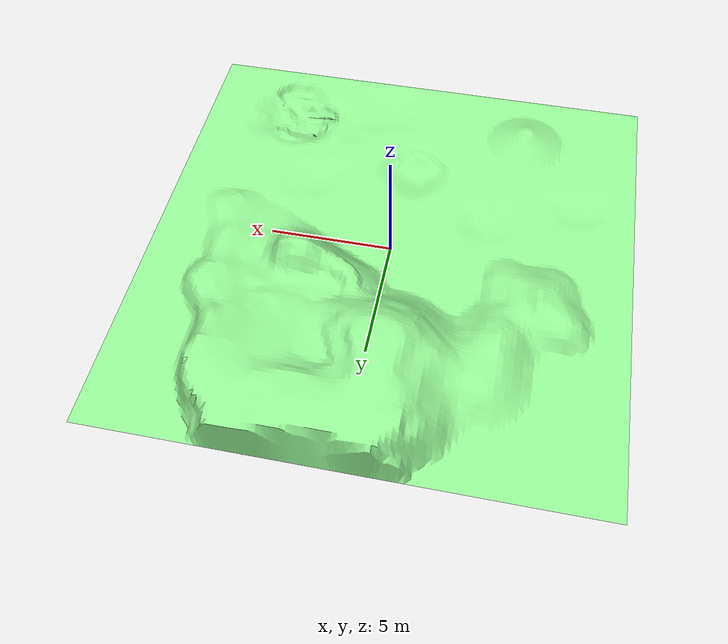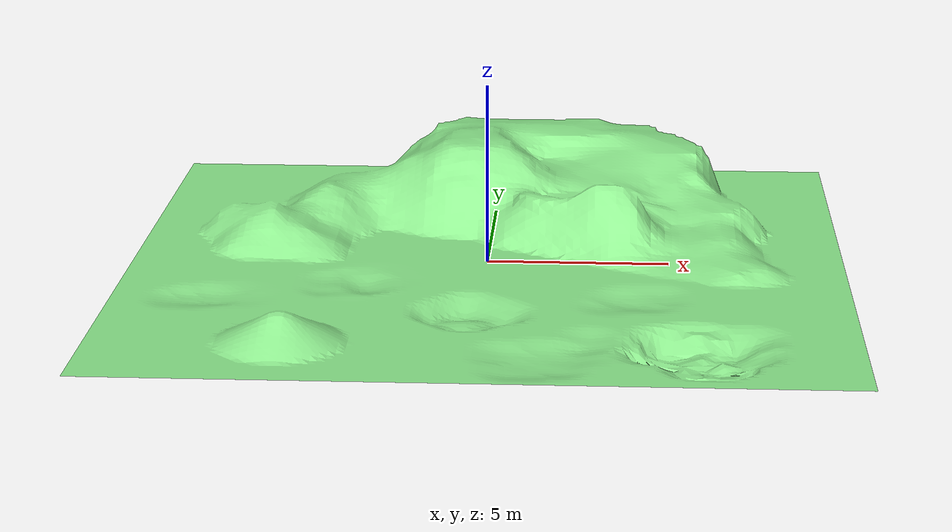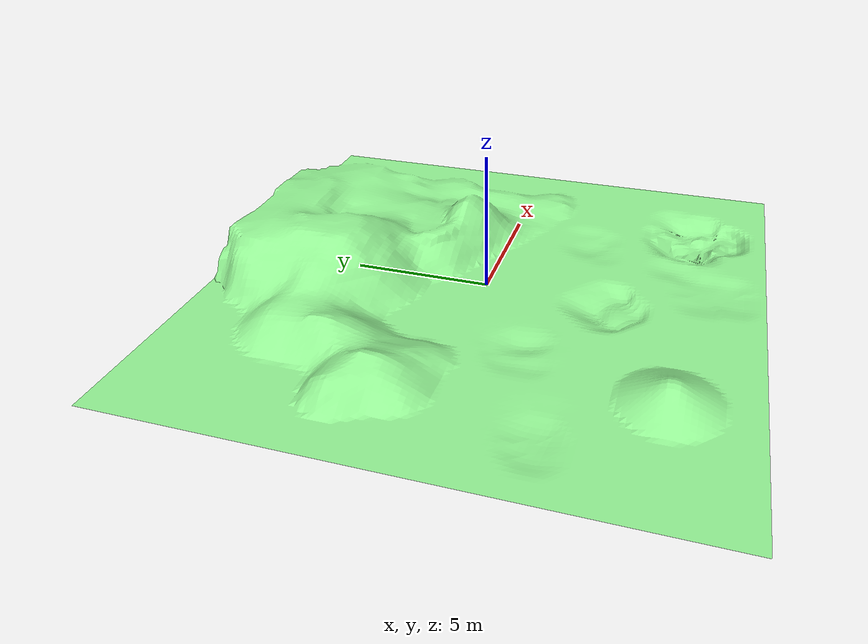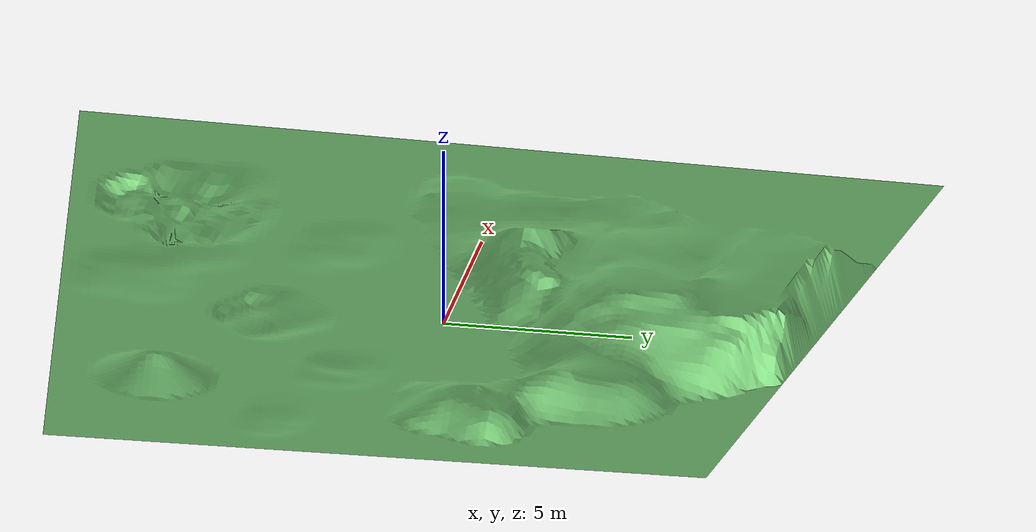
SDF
<?xml version="1.0"?>
<sdf version="1.4">
  <model name="Map1">
    <static>true</static>
    <link name="link">
      <pose>0 0 0 0 0 0</pose>
      <collision name="collision">
        <geometry>
          <mesh>
            <uri>model://map1/meshes/map3.dae</uri>
            <scale>0.025 0.025 0.0125</scale>
          </mesh>
        </geometry>
      </collision>
      <visual name="visual">
        <geometry>
          <mesh>
            <uri>model://map1/meshes/map3.dae</uri>
            <scale>0.025 0.025 0.0125</scale>
          </mesh>
        </geometry>
        <material>
          <script>
            <uri>model://map1/materials/scripts</uri>
            <uri>model://map1/materials/textures</uri>
            <name>Map1/Image</name>
          </script>
        </material>
      </visual>
    </link>
  </model>
</sdf>
